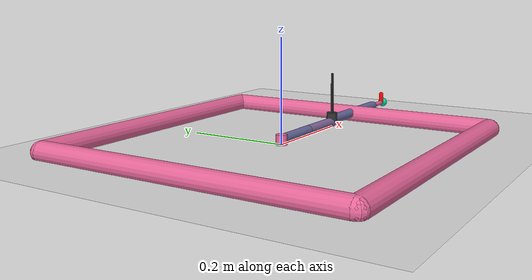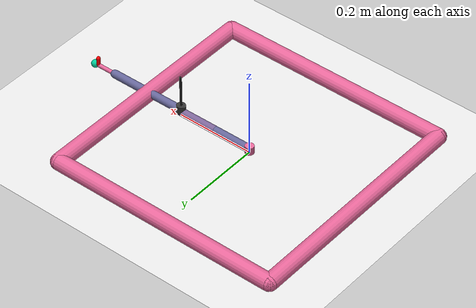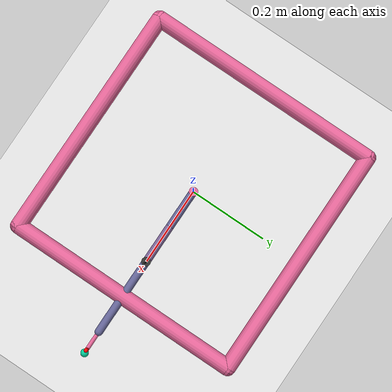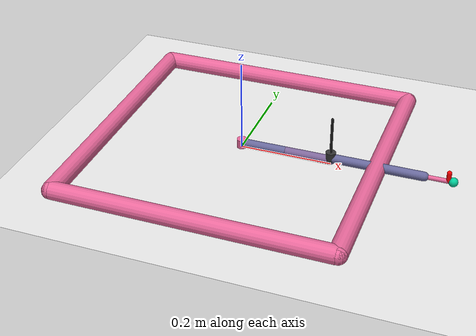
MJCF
<mujoco model="reacher">
    <compiler angle="radian" inertiafromgeom="true"/>
    <default>
        <joint armature="1" damping="1" limited="true"/>
        <geom contype="0" friction="1 0.1 0.1" rgba="0.7 0.7 0 1"/>
    </default>
    <option gravity="0 0 -9.81" integrator="RK4" timestep="0.01"/>
    <worldbody>
        <!-- Arena -->
        <geom conaffinity="0" contype="0" name="ground" pos="0 0 0" rgba="0.9 0.9 0.9 1" size="1 1 10" type="plane"/>
        <geom conaffinity="0" fromto="-.3 -.3 .01 .3 -.3 .01" name="sideS" rgba="0.9 0.4 0.6 1" size=".02"
              type="capsule"/>
        <geom conaffinity="0" fromto=" .3 -.3 .01 .3  .3 .01" name="sideE" rgba="0.9 0.4 0.6 1" size=".02"
              type="capsule"/>
        <geom conaffinity="0" fromto="-.3  .3 .01 .3  .3 .01" name="sideN" rgba="0.9 0.4 0.6 1" size=".02"
              type="capsule"/>
        <geom conaffinity="0" fromto="-.3 -.3 .01 -.3 .3 .01" name="sideW" rgba="0.9 0.4 0.6 1" size=".02"
              type="capsule"/>
        <!-- Arm -->
        <geom conaffinity="0" contype="0" fromto="0 0 0 0 0 0.02" name="root" rgba="0.9 0.4 0.6 1" size=".011"
              type="cylinder"/>
        <body name="body0" pos="0 0 .01">
            <geom fromto="0 0 0 0.1 0 0" name="posarm1" rgba="0.4 0.4 0.6 1" size=".01" type="capsule"/>
            <joint axis="0 0 1" limited="false" name="joint0" pos="0 0 0" range="-3.0 3.0" type="hinge"/>
            <body name="Posarm2" pos="0.1 0 0">
                <joint axis="0 0 1" limited="true" name="joint1" pos="0 0 0" range="-3.0 3.0" type="hinge"/>
                <geom fromto="0 0 0 0.1 0 0" name="posarm2" rgba="0.49 0.4 0.6 1" size=".01" type="capsule"/>
                <geom fromto="0.1 0 0 0.1 0 0.1" name="riserguide" rgba="0.1 0.1 0.1 1" size=".003" type="capsule"/>
                <body name="Riser" pos="0.1 0 0">
                    <joint armature="0" axis="0 0 0.1" damping="0" limited="true" name="joint2" pos="0 0 0" range="0 1" stiffness="0" type="slide"/>
                    <geom conaffinity="0" contype="0" fromto="0 0 0 0 0 0.02" name="collar" rgba="0.2 0.2 0.2 1" size=".011" type="cylinder"/>
                    <body name="Shoulder" pos="0 0 0">
                        <joint axis="0 0 1" limited="true" name="joint3" pos="0 0 0" range="-3.0 3.0" type="hinge"/>
                        <body name="Humur" pos="0 0 0.005">
                            <joint axis="0 1 0" limited="true" name="joint4" pos="0 0 0" range="-2.7 -1.0" type="hinge"/>
                            <geom fromto="0 0 0 0.1 0 0" name="humur" rgba="0.4 0.4 0.6 1" size=".01" type="capsule"/>
                            <body name="Forearm" pos="0.1 0 0">
                                <joint axis="0 1 0" limited="true" name="joint5" pos="0 0 0" range="0.2 2.7"
                                       type="hinge"/>
                                <body name="Forarm2" pos="0 0 0">
                                    <joint axis="1 0 0" limited="true" name="joint6" pos="0 0 0" range="-1.4 1.4"
                                           type="hinge"/>
                                    <geom fromto="0 0 0 0.1 0 0" name="forearm" rgba="0.4 0.4 0.6 1" size=".01"
                                      type="capsule"/>
                                    <body name="wristtwist" pos="0.1 0 0">
                                        <joint axis="0 1 0" limited="true" name="joint7" pos="0 0 0" range="-1.4 1.4"
                                               type="hinge"/>
                                        <body name="wristbend" pos="0 0 0">
                                            <joint axis="1 0 0" limited="true" name="joint8" pos="0 0 0"
                                                   range="-1.4 1.4"
                                                   type="hinge"/>
                                            <geom fromto="0 0 0 0.05 0 0" name="finger" rgba="0.9 0.4 0.6 1" size=".005"
                                                  type="capsule"/>
                                            <geom fromto="0.05 0 0 0.05 0 0.02" name="thumb" rgba="1 0 0 1" size=".005"
                                                  type="capsule"/>
                                            <body name="fingertip" pos="0.06 0 0">
                                                <geom contype="0" name="fingertip" pos="0 0 0" rgba="0.0 0.8 0.6 1"
                                                      size=".01"
                                                      type="sphere"/>
                                            </body>
                                        </body>
                                    </body>
                                </body>
                            </body>
                        </body>
                    </body>
                </body>
            </body>
        </body>
        <!-- Target -->
        <body name="target" pos="0 0 .01">
            <joint armature="0" axis="1 0 0" damping="0" limited="true" name="target_x" pos="0 0 0" range="-.27 .27"
                   stiffness="0" type="slide"/>
            <joint armature="0" axis="0 1 0" damping="0" limited="true" name="target_y" pos="0 0 0" range="-.27 .27"
                   stiffness="0" type="slide"/>
            <joint armature="0" axis="0 0 1" damping="0" limited="true" name="target_z" pos="0 0 0" range="0 .27"
                   stiffness="0" type="slide"/>
            <geom conaffinity="0" contype="0" name="target" pos="0 0 0" rgba="0.9 0.2 0.2 1" size=".009" type="sphere"/>
        </body>
    </worldbody>
    <actuator>
        <motor ctrllimited="true" ctrlrange="-1.0 1.0" gear="200.0" joint="joint0"/>
        <motor ctrllimited="true" ctrlrange="-1.0 1.0" gear="200.0" joint="joint1"/>
        <motor ctrllimited="true" ctrlrange="-1.0 1.0" gear="200.0" joint="joint2"/>
        <motor ctrllimited="true" ctrlrange="-1.0 1.0" gear="200.0" joint="joint3"/>
        <motor ctrllimited="true" ctrlrange="-1.0 1.0" gear="200.0" joint="joint4"/>
        <motor ctrllimited="true" ctrlrange="-1.0 1.0" gear="200.0" joint="joint5"/>
        <motor ctrllimited="true" ctrlrange="-1.0 1.0" gear="200.0" joint="joint6"/>
        <motor ctrllimited="true" ctrlrange="-1.0 1.0" gear="200.0" joint="joint7"/>
        <motor ctrllimited="true" ctrlrange="-1.0 1.0" gear="200.0" joint="joint8"/>
    </actuator>
</mujoco>
